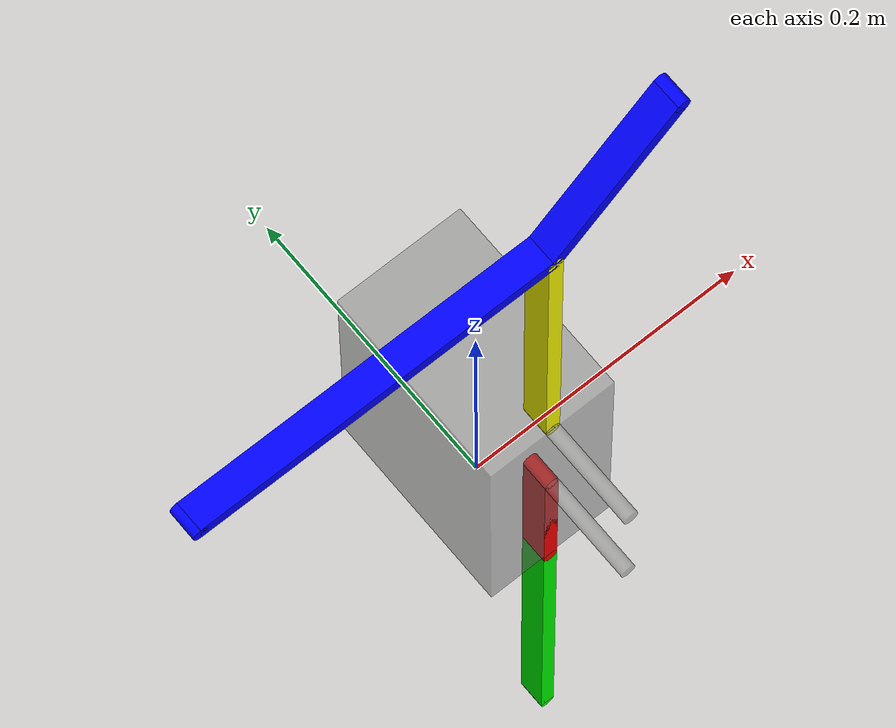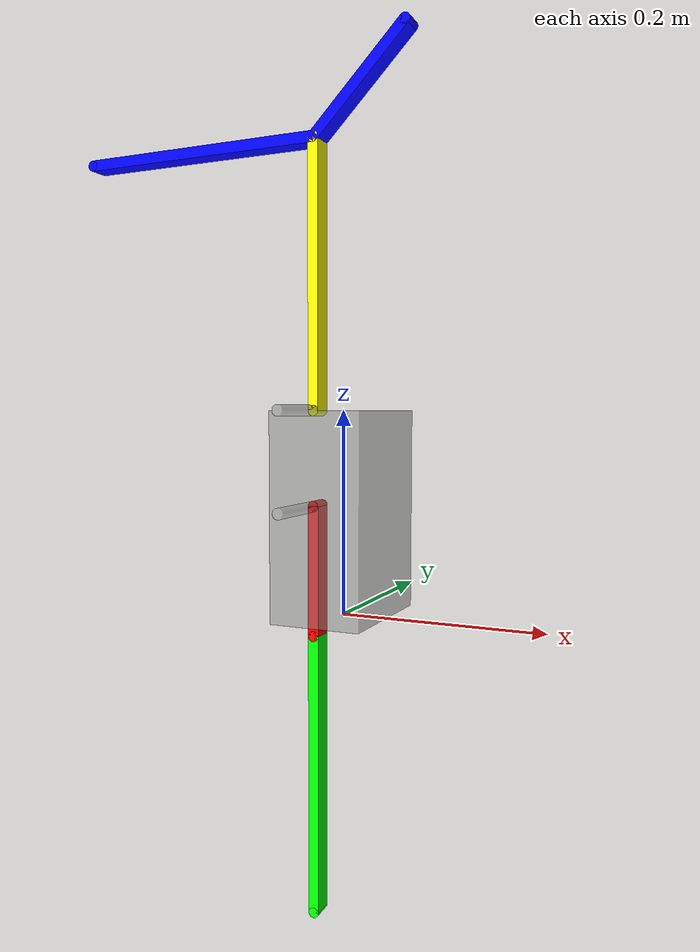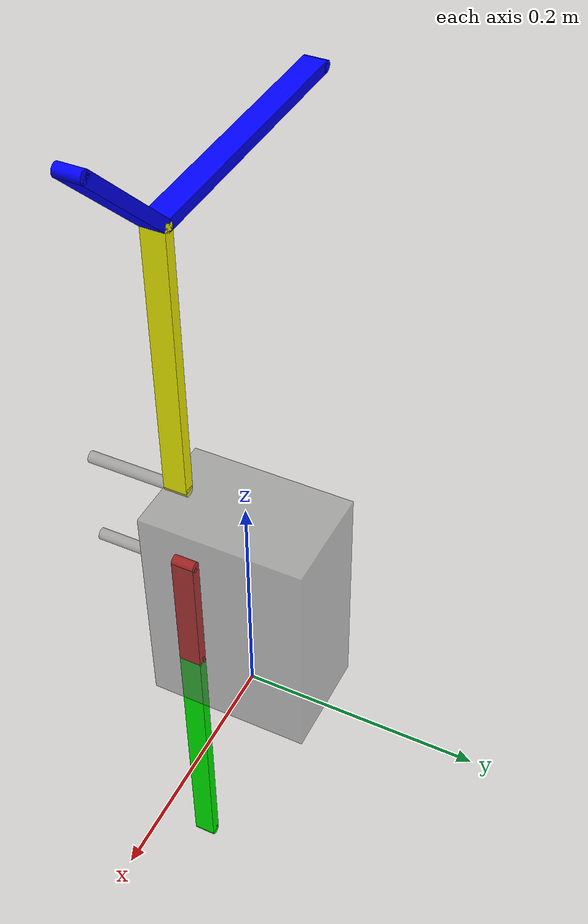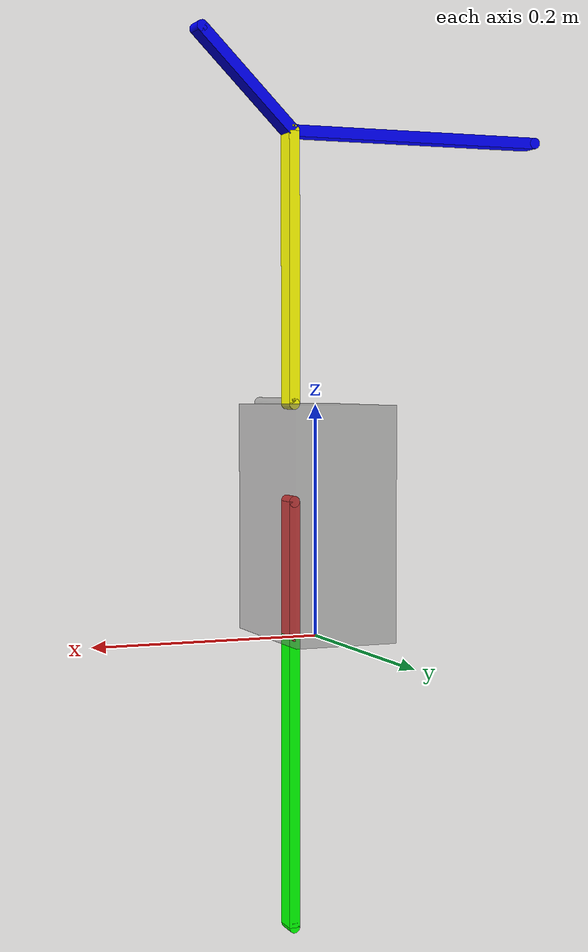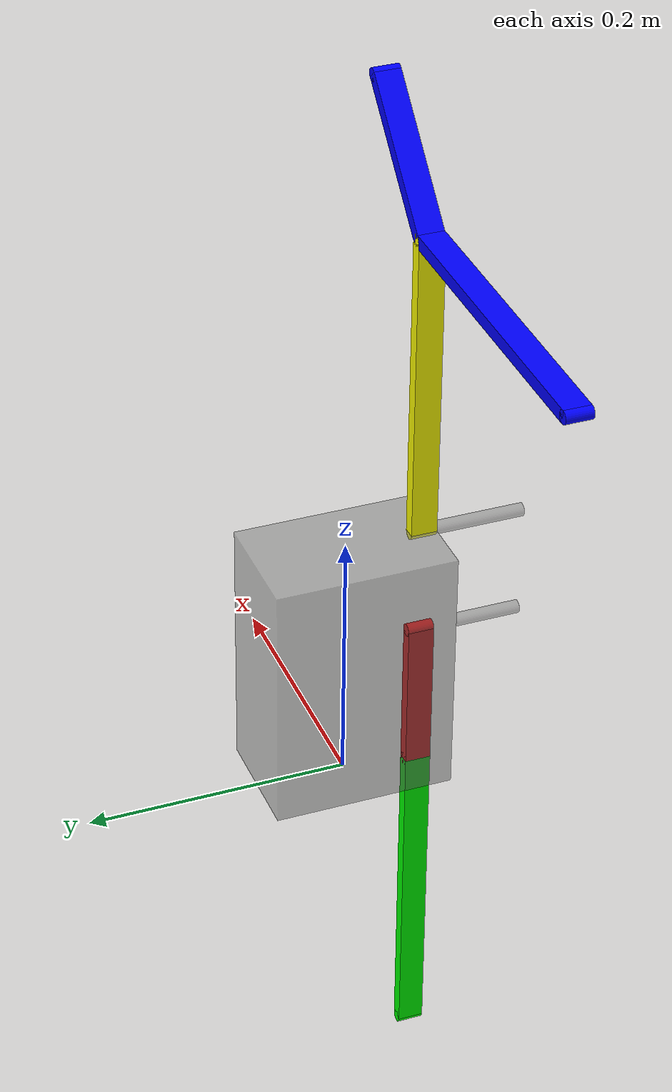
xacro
<?xml version="1.0"?>
<robot xmlns:xacro="http://ros.org/wiki/xacro" name="robot">

  <xacro:include filename="$(find bam_descriptions)/urdf/common.xacro" />

  <!--
  Copied from dummy_five_bar.urdf.xacro

  Values changes to match prototype arm
   -->

  <!-- Five-Bar Mechanism Parameters (in meters) -->
  <xacro:arg name="L_l1" default="0.240"/>      <!-- Length of link 1 -->
  <xacro:arg name="L_l2" default="0.240"/>      <!-- Length of link 2 -->
  <xacro:arg name="L_c1" default="0.120"/>      <!-- Length of coupler 1 -->
  <xacro:arg name="L_c2" default="0.265"/>      <!-- Length of coupler 2 -->
  <xacro:arg name="L_shoulder" default="0.087"/> <!-- Shoulder offset length -->
  <xacro:arg name="L_elbow" default="0.120"/>   <!-- Elbow offset length -->
  <xacro:arg name="theta_elbow_offset" default="0.785398"/> <!-- Elbow offset angle in radians (45 degrees) -->

  <xacro:property name="L_l1" value="$(arg L_l1)"/>
  <xacro:property name="L_l2" value="$(arg L_l2)"/>
  <xacro:property name="L_c1" value="$(arg L_c1)"/>
  <xacro:property name="L_c2" value="$(arg L_c2)"/>
  <xacro:property name="L_shoulder" value="$(arg L_shoulder)"/>
  <xacro:property name="L_elbow" value="$(arg L_elbow)"/>
  <xacro:property name="theta_elbow_offset" value="$(arg theta_elbow_offset)"/>

  <xacro:arg name="dh_d1" default="0.2"/>
  <xacro:property name="dh_d1" value="$(arg dh_d1)"/>

  <xacro:arg name="j2_axis_offset" default="${69/1000}"/>
  <xacro:property name="j2_axis_offset" value="$(arg j2_axis_offset)"/>

  <xacro:arg name="plugin" default="mock"/>  <!-- none, mock, gazebo, real -->
  <xacro:property name="plugin" value="$(arg plugin)" />

  <xacro:arg name="controllers_file_path" default="/home/bam/bam_ws/src/bam_core/bam_core_bringup/config/controllers/five_bar_controllers.yaml"/>
  <xacro:property name="controllers_file_path" value="$(arg controllers_file_path)"/>

  <xacro:arg name="ros_namespace" default=""/>
  <xacro:property name="ros_namespace" value="$(arg ros_namespace)"/>

  <xacro:arg name="world_xyz" default="0 0 0"/>
  <xacro:property name="world_xyz" value="$(arg world_xyz)"/>

  <xacro:arg name="world_rpy" default="0 0 0"/>
  <xacro:property name="world_rpy" value="$(arg world_rpy)"/>

  <xacro:arg name="base_xyz" default="0 0 0"/>
  <xacro:property name="base_xyz" value="$(arg base_xyz)"/>

  <xacro:arg name="base_rpy" default="0 0 0"/>
  <xacro:property name="base_rpy" value="$(arg base_rpy)"/>

  <xacro:arg name="ros2_control" default="true"/>
  <xacro:property name="ros2_control" value="$(arg ros2_control)"/>

  <xacro:arg name="prefix" default=""/>
  <xacro:property name="prefix" value="$(arg prefix)"/>

  <xacro:arg name="k_damping" default="0.001"/>
  <xacro:property name="k_damping" value="$(arg k_damping)"/>

  <xacro:arg name="k_friction" default="0.01"/>
  <xacro:property name="k_friction" value="$(arg k_friction)"/>

  <xacro:arg name="couple_arms" default="true"/>
  <xacro:property name="couple_arms" value="$(arg couple_arms)"/>

  <xacro:arg name="reflect" default="1"/>
  <xacro:property name="reflect" value="$(arg reflect)"/>

  <xacro:property name="pos_reflect_1_neg_reflect_0" value="${(reflect+1)*0.5}"/>
  <xacro:property name="pos_reflect_0_neg_reflect_1" value="${(reflect-1)*-0.5}"/>

<!-- World is used to position robot in the world, Assuming that it's already orietnated correctly -->
    <link name="world"/>

    <joint name="world_to_base" type="fixed">
        <origin xyz="${world_xyz}" rpy="${world_rpy}"/>
        <parent link="world"/>
        <child link="base_link"/>
    </joint>

    <link name="base_link">
        <xacro:dummy_inertial/>
    </link>

<!-- Base link is used to position the robot correctly relative to its self -->
    <joint name="base_link_joint" type="fixed">
        <origin xyz="${base_xyz}" rpy="${base_rpy}"/>
        <parent link="base_link"/>
        <child link="dummy_base_link"/>
    </joint>

    <link name="dummy_base_link">
        <xacro:dummy_inertial/>
    </link>

  <joint name="${prefix}joint_1" type="revolute">
    <parent link="dummy_base_link"/>
    <child link="${prefix}link_0"/>
    <origin xyz="0 0 0" rpy="0 0 ${pos_reflect_1_neg_reflect_0*pi}"/> <!-- UR base link is rotated 180 deg -->

    <axis xyz="0 0 1"/>
    <limit lower="${-pi}" upper="${pi}" velocity="100" effort="100"/>
  </joint>

  <link name="${prefix}link_0">
    <visual>
      <origin xyz="0 0 ${dh_d1/2}" rpy="0 0 0"/>
      <geometry>
        <box size="${90/1000} ${j2_axis_offset*2} ${dh_d1}"/>
      </geometry>
      <material name="grey"><color rgba="0.5 0.5 0.5 0.5"/></material>
    </visual>
  </link>

  <joint name="${prefix}link_0_to_shoulder_center" type="fixed">
    <parent link="${prefix}link_0"/>
    <child link="${prefix}shoulder_center"/>
    <origin xyz="0 ${j2_axis_offset} ${dh_d1}" rpy="${-pi/2} ${-pi/2} ${pos_reflect_1_neg_reflect_0*pi}"/>

  </joint>

  <link name="${prefix}shoulder_center">
  </link>

  <joint name="${prefix}centering_joint" type="fixed">
    <parent link="${prefix}shoulder_center"/>
    <child link="${prefix}shoulder"/>
    <origin xyz="-${L_shoulder} 0 0" rpy="0 0 0"/>

  </joint>

  <xacro:include filename="$(find bam_descriptions)/urdf/dummy_five_bar/five_bar_marco.xacro"/>

  <xacro:five_bar
    prefix=""
    L_l1="${L_l1}"
    L_l2="${L_l2}"
    L_c1="${L_c1}"
    L_c2="${L_c2}"
    L_shoulder="${L_shoulder}"
    L_elbow="${L_elbow}"
    theta_elbow_offset="${theta_elbow_offset}"
    k_damping="${k_damping}"
    k_friction="${k_friction}"
    actuator_length="${j2_axis_offset}"/>

    <xacro:if value="${ros2_control}">
    <xacro:include filename="$(find bam_descriptions)/urdf/dummy_five_bar/five_bar.ros2_control.xacro" />
        <xacro:five_bar_ros2_control
        prefix="${prefix}"
        plugin="${plugin}"
        controllers_file_path="${controllers_file_path}"
        ros_namespace="${ros_namespace}"
        couple_arms="${couple_arms}"/>

    </xacro:if>

</robot>

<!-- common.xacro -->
<robot xmlns:xacro="http://www.ros.org/wiki/xacro">

  <xacro:property name="deg2rad" value="${pi/180}"/>
  <xacro:property name="rev2rad" value="${2*pi}"/>
  <xacro:property name="inch2m" value="${25.4/1000}"/>
  <xacro:property name="mm2m" value="${1/1000}"/>

  <xacro:macro name="cylinder_tube_link" params="name outer_radius inner_radius length density origin_offset mass=-1 material='StoglRobotics/LightGrey'">
    <!-- Length goes along z axis -->

      <link name="${name}">

        <xacro:if value="${mass == -1}">
          <xacro:property name="outer_area" value="${outer_radius * outer_radius * pi}"/>
          <xacro:property name="inner_area" value="${inner_radius * inner_radius * pi}"/>
          <xacro:property name="volume" value="${length * (outer_area - inner_area)}"/>
          <xacro:property name="mass" value="${volume * density}"/>
        </xacro:if>

        <visual>
          <origin xyz="0 0 ${origin_offset}" rpy="0 0 0"/>
          <geometry>
              <cylinder length="${length}" radius="${outer_radius}"/>
          </geometry>
          <material name="${material}"/>
        </visual>

        <collision>
          <origin xyz="0 0 ${origin_offset}" rpy="0 0 0"/>
          <geometry>
              <cylinder length="${length}" radius="${outer_radius}"/>
          </geometry>
        </collision>

        <xacro:cylinder_inertial length="${length}" outer_radius="${outer_radius}" inner_radius="${inner_radius}" mass="${mass}" origin_xyz="0 0 ${origin_offset}"/>

      </link>
  </xacro:macro>

  <xacro:macro name="rectangular_tube_link"
      params="name width length height wall_thickness density origin_offset mass=-1 material='StoglRobotics/LightGrey'"> -->

      <!-- Length goes along y, width goes along x, height goes along z -->

      <!-- length goes from hole to hole, while link_total_length goes from outer edge to outer edge. To center link around holes, add width/2 to both ends -->
      <xacro:if value="${mass == -1}">
        <xacro:property name="outer_area" value="${width * height}"/>
        <xacro:property name="inner_area" value="${(width - 2*wall_thickness) * (height - 2*wall_thickness)}"/>
        <xacro:property name="volume" value="${length * (outer_area - inner_area)}"/>
        <xacro:property name="mass" value="${volume * density}"/>
      </xacro:if>

      <link name="${name}">

        <!-- It may make more sense to have origin in center of thickness, but when you export as cade, usally is done from edge -->
        <visual>
            <origin xyz="0 ${origin_offset} ${height/2}" rpy="0 0 0"/>
            <geometry>
                <box size="${width} ${length} ${height}"/>
            </geometry>
            <material name="${material}"/>
        </visual>

        <collision>
            <origin xyz="0 ${origin_offset} ${height/2}" rpy="0 0 0"/>
            <geometry>
                <box size="${width} ${length} ${height}"/>
            </geometry>
        </collision>

        <xacro:solid_cuboid_inertial width="${width}" height="${length}" depth="${height}" mass="${mass}" origin_xyz="0 ${origin_offset} ${height/2}"/>
      </link>

  </xacro:macro>

  <xacro:macro name="rectangular_plate_link" params="name width length plate_thickness density origin_offset mass=-1 material='StoglRobotics/LightGrey'">
      <!-- Origin offset is usally length/2 or length/2 + width/2 + width/2  -->
      <!-- length goes from hole to hole, while link_total_length goes from outer edge to outer edge. To center link around holes, add width/2 to both ends -->

      <!-- Length goes along y, width goes along x, thickness goes along z -->

      <xacro:if value="${mass == -1}">
        <xacro:property name="volume" value="${length * width * plate_thickness}"/>
        <xacro:property name="mass" value="${volume * density}"/>
      </xacro:if>

      <!-- It may make more sense to have origin in center of thickness, but when you export as cade, usally is done from edge -->
      <link name="${name}">

      <visual>
          <origin xyz="0 ${origin_offset} ${plate_thickness/2}" rpy="0 0 0"/>
          <geometry>
              <box size="${width} ${length} ${plate_thickness}"/>
          </geometry>
          <material name="${material}"/>
      </visual>

      <collision>
          <origin xyz="0 ${origin_offset} ${plate_thickness/2}" rpy="0 0 0"/>
          <geometry>
              <box size="${width} ${length} ${plate_thickness}"/>
          </geometry>
      </collision>

      <xacro:solid_cuboid_inertial width="${width}" height="${length}" depth="${plate_thickness}" mass="${mass}" origin_xyz="0 ${origin_offset} ${plate_thickness/2}"/>
      </link>

  </xacro:macro>

  <!-- https://en.wikipedia.org/wiki/List_of_moments_of_inertia#:~:text=Solid%20cuboid%20of%20width -->
  <!-- Inertia properties for wrist_link, scoped to this macro only -->
  <!-- Width goes along x, height goes along y, depth goes along z -->
  <xacro:macro name="solid_cuboid_inertial" params="width height depth mass origin_xyz">
      <xacro:property name="inertia_xx" value="${(1/12) * mass * (height * height + depth * depth)}"/>
      <xacro:property name="inertia_yy" value="${(1/12) * mass * (width * width + depth * depth)}"/>
      <xacro:property name="inertia_zz" value="${(1/12) * mass * (width * width + height * height)}"/>
      <inertial>
          <origin xyz="${origin_xyz}"/>
          <mass value="${mass}"/>
          <inertia ixx="${inertia_xx}" ixy="0" ixz="0"
                    iyy="${inertia_yy}" iyz="0"
                    izz="${inertia_zz}"/>
      </inertial>
  </xacro:macro>

  <!-- https://en.wikipedia.org/wiki/List_of_moments_of_inertia#:~:text=%5D-,Solid%20cylinder%20of,-radius%20r%2C%20height -->
  <!-- Inertia properties for motor block, scoped to this macro only -->
  <!-- I initally thought it should be outer_radius - inner_radius, but actually a hollow cylinder should have a higher interia! as more mass further away -->
  <xacro:macro name="cylinder_inertial" params="length outer_radius mass origin_xyz inner_radius=0">
      <xacro:property name="inertia_xx" value="${(1/12) * mass * (3*(outer_radius*outer_radius + inner_radius*inner_radius) + length*length)}"/>
      <xacro:property name="inertia_yy" value="${(1/12) * mass * (3*(outer_radius*outer_radius + inner_radius*inner_radius) + length*length)}"/>
      <xacro:property name="inertia_zz" value="${0.5*mass*(outer_radius*outer_radius + inner_radius*inner_radius)}"/>
      <inertial>
          <origin xyz="${origin_xyz}"/>
          <mass value="${mass}"/>
          <inertia ixx="${inertia_xx}" ixy="0" ixz="0"
                    iyy="${inertia_yy}" iyz="0"
                    izz="${inertia_zz}"/>
      </inertial>
  </xacro:macro>

<xacro:macro name="dummy_inertial">
<!-- Super small interia to not effect dynamics and small rviz interia box -->
    <inertial>
        <mass value="0.0001"/>
        <origin xyz="0 0 0" rpy="0 0 0"/>
        <inertia
            ixx="0.001" ixy="0.00001" ixz="0.00001"
            iyy="0.001" iyz="0.00001"
            izz="0.001"/>
    </inertial>
</xacro:macro>

<xacro:macro name="dummy_link">

  <!-- Small visual box so that link can be turned off in rviz -->
  <visual>
    <origin xyz="0 0 0" rpy="0 0 0"/>
    <geometry>
      <box size="0.001 0.001 0.001"/>
    </geometry>
    <material name="transparent_gray">
      <color rgba="0.5 0.5 0.5 0.1"/>
    </material>
  </visual>

  <xacro:dummy_inertial/>

</xacro:macro>

  <material name="StoglRobotics/Violet">
    <color rgba="${102/255} ${46/255} ${145/255} 1.0"/>
    <ambient>1 0 0 1</ambient>
    <diffuse>1 0 0 1</diffuse>
    <specular>0.1 0.1 0.1 1</specular>
    <emissive>0 0 0 0</emissive>
  </material>

  <material name="StoglRobotics/DarkGrey">
    <color rgba="${51/255} ${51/255} ${51/255} 1.0"/>
    <ambient>1 0 0 1</ambient>
    <diffuse>1 0 0 1</diffuse>
    <specular>0.1 0.1 0.1 1</specular>
    <emissive>0 0 0 0</emissive>
  </material>

  <material name="StoglRobotics/LightGrey">
    <color rgba="${194/255} ${194/255} ${194/255} 1.0"/>
    <ambient>1 0 0 1</ambient>
    <diffuse>1 0 0 1</diffuse>
    <specular>0.1 0.1 0.1 1</specular>
    <emissive>0 0 0 0</emissive>
  </material>

  <material name="Ghost">
    <color rgba="${194/255} ${194/255} ${194/255} 0.5"/>
    <ambient>1 0 0 1</ambient>
    <diffuse>1 0 0 1</diffuse>
    <specular>0.1 0.1 0.1 1</specular>
    <emissive>0 0 0 0</emissive>
  </material>

  <material name="Black">
    <color rgba="${0/255} ${0/255} ${0/255} 1"/>
    <ambient>1 0 0 1</ambient>
    <diffuse>1 0 0 1</diffuse>
    <specular>0.1 0.1 0.1 1</specular>
    <emissive>0 0 0 0</emissive>
  </material>

  <material name="White">
    <color rgba="${255/255} ${255/255} ${255/255} 1"/>
    <ambient>1 0 0 1</ambient>
    <diffuse>1 0 0 1</diffuse>
    <specular>0.1 0.1 0.1 1</specular>
    <emissive>0 0 0 0</emissive>
  </material>

  <material name="Red">
    <color rgba="1.0 0.0 0.0 1.0"/>
    <ambient>1 0 0 1</ambient>
    <diffuse>1 0 0 1</diffuse>
    <specular>0.1 0.1 0.1 1</specular>
    <emissive>0 0 0 0</emissive>
  </material>

  <material name="Orange">
    <color rgba="1.0 0.55 0.0 1.0"/>
    <ambient>1 0.5 0 1</ambient>
    <diffuse>1 0.5 0 1</diffuse>
    <specular>0.1 0.1 0.1 1</specular>
    <emissive>0 0 0 0</emissive>
  </material>

  <material name="Yellow">
    <color rgba="1.0 1.0 0.0 1.0"/>
    <ambient>1 1 0 1</ambient>
    <diffuse>1 1 0 1</diffuse>
    <specular>0.1 0.1 0.1 1</specular>
    <emissive>0 0 0 0</emissive>
  </material>

  <material name="Green">
    <color rgba="0.0 1.0 0.0 1.0"/>
    <ambient>0 1 0 1</ambient>
    <diffuse>0 1 0 1</diffuse>
    <specular>0.1 0.1 0.1 1</specular>
    <emissive>0 0 0 0</emissive>
  </material>

  <material name="Blue">
    <color rgba="0.0 0.0 1.0 1.0"/>
    <ambient>0 0 1 1</ambient>
    <diffuse>0 0 1 1</diffuse>
    <specular>0.1 0.1 0.1 1</specular>
    <emissive>0 0 0 0</emissive>
  </material>

  <material name="Indigo">
    <color rgba="0.29 0.0 0.51 1.0"/>
    <ambient>0.25 0 0.45 1</ambient>
    <diffuse>0.25 0 0.45 1</diffuse>
    <specular>0.1 0.1 0.1 1</specular>
    <emissive>0 0 0 0</emissive>
  </material>

  <material name="Violet">
    <color rgba="0.56 0.0 1.0 1.0"/>
    <ambient>0.5 0 1 1</ambient>
    <diffuse>0.5 0 1 1</diffuse>
    <specular>0.1 0.1 0.1 1</specular>
    <emissive>0 0 0 0</emissive>
  </material>

</robot>

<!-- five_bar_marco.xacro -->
<robot xmlns:xacro="http://ros.org/wiki/xacro" name="robot">

  <!-- Five-Bar Mechanism Parameters (in meters) -->
  <xacro:arg name="L_l1" default="0.240"/>      <!-- Length of link 1 -->
  <xacro:arg name="L_l2" default="0.240"/>      <!-- Length of link 2 -->
  <xacro:arg name="L_c1" default="0.120"/>      <!-- Length of coupler 1 -->
  <xacro:arg name="L_c2" default="0.265"/>      <!-- Length of coupler 2 -->
  <xacro:arg name="L_shoulder" default="0.087"/> <!-- Shoulder offset length -->
  <xacro:arg name="L_elbow" default="0.120"/>   <!-- Elbow offset length -->
  <xacro:arg name="theta_elbow_offset" default="0.785398"/> <!-- Elbow offset angle in radians (45 degrees) -->

  <xacro:property name="L_l1" value="$(arg L_l1)"/>
  <xacro:property name="L_l2" value="$(arg L_l2)"/>
  <xacro:property name="L_c1" value="$(arg L_c1)"/>
  <xacro:property name="L_c2" value="$(arg L_c2)"/>
  <xacro:property name="L_shoulder" value="$(arg L_shoulder)"/>
  <xacro:property name="L_elbow" value="$(arg L_elbow)"/>
  <xacro:property name="theta_elbow_offset" value="$(arg theta_elbow_offset)"/>

  <!-- Hardcoded values -->

  <xacro:property name="link_width" value="0.01"/>
  <xacro:property name="link_thickness" value="${20/1000}"/>
  <xacro:property name="link_density" value="2700"/>  <!--The density of aluminum is approximately 2,700 kg/m³-->

  <xacro:property name="deg2rad" value="${pi/180}"/>
  <!-- Buffer needed on second links to avoid singularity of folding backwards-->
  <xacro:property name="buffer" value="${5 * deg2rad}"/>

  <!-- BUG at 180 + 45, there is a elbow forward/backwards singualrity you hit... that shows up as an inconsitency in the reach map.. -->
  <xacro:property name="J2_upper" value="${(180 + 35) * deg2rad}"/>
  <xacro:property name="J2_lower" value="${0 * deg2rad}"/>

  <!-- Elbow should just be able to curl inwards -->
  <!-- Important to add buffer or you will hit singularities!! -->
  <xacro:property name="J3_upper" value="${0 * deg2rad - buffer}"/>
  <xacro:property name="J3_lower" value="${-pi + theta_elbow_offset + buffer}"/>  <!-- Reasonable to -->
  <xacro:property name="J3_lower" value="${-pi + buffer}"/>  <!-- For viz of entire workspace -->

  <xacro:property name="C1_upper" value="${340 * deg2rad}"/>
  <xacro:property name="C1_lower" value="${20 * deg2rad}"/>

  <xacro:property name="C2_upper" value="${180 * deg2rad - buffer}"/>
  <xacro:property name="C2_lower" value="${-180 * deg2rad + buffer}"/>

  <!-- Link Colors -->
  <xacro:property name="shoulder_color" value="0.5 0.5 0.5 0.5"/>          <!-- Blue for shoulder -->
  <xacro:property name="c1_color" value="1 0 0 1"/>           <!-- Red for couplers -->
  <xacro:property name="c2_color" value="0 1 0 1"/>         <!-- Green for upper arm -->
  <xacro:property name="l1_color" value="1 1 0 1"/>          <!-- Yellow for fore arm -->
  <xacro:property name="l2_color" value="0 0 1 1"/>          <!-- Blue for fore arm -->

  <xacro:macro name="slot_link" params="name link_width link_length link_thickness link_mass color">
    <!-- Length goes along y, width goes along x, thickness goes along z -->

    <xacro:property name="link_inertia_xx_zz" value="${(1/12) * link_mass * link_length * link_length}"/>

    <link name="${name}">
      <visual>
        <origin xyz="0 0 ${link_thickness/2}" rpy="0 0 0"/>
        <geometry>
          <cylinder radius="${link_width/2}" length="${link_thickness}"/>
        </geometry>
        <material name="${name}_material"><color rgba="${color}"/></material>
      </visual>

      <visual>
        <origin xyz="0 ${link_length/2} ${link_thickness/2}" rpy="0 0 0"/>
        <geometry>
          <box size="${link_width} ${link_length} ${link_thickness}"/>
        </geometry>
        <material name="${name}_material"><color rgba="${color}"/></material>
      </visual>

      <visual>
        <origin xyz="0 ${link_length} ${link_thickness/2}" rpy="0 0 0"/>
        <geometry>
          <cylinder radius="${link_width/2}" length="${link_thickness}"/>
        </geometry>
        <material name="${name}_material"><color rgba="${color}"/></material>
      </visual>

      <inertial>
        <origin xyz="0 ${link_length/2} ${link_thickness/2}"/>
        <mass value="${link_mass}"/>
        <inertia ixx="${link_inertia_xx_zz}" ixy="0" ixz="0"
                 iyy=" 1e-6" iyz="0"
                 izz="${link_inertia_xx_zz}"/>
      </inertial>

    </link>
  </xacro:macro>

<!-- Joints should be named to match the real arm, so that the five bar kinematics joint_to_name_index mapping works -->
    <!-- self.J2_joint_index = name_to_joint_index['joint_2'] # real -->
    <!-- self.J3_joint_index = name_to_joint_index['joint_3'] # virtual -->
    <!-- self.joint_c1_index = name_to_joint_index['joint_c1'] # real -->
    <!-- self.joint_c2_index = name_to_joint_index['joint_c2'] # virtual -->

  <xacro:macro name="five_bar" params="
    prefix=''
    L_l1
    L_l2
    L_c1
    L_c2
    L_shoulder
    L_elbow
    theta_elbow_offset
    k_damping
    k_friction
    actuator_length=0.05
    ">

    <link name="${prefix}shoulder">
      <visual>
        <origin xyz="0 0 ${-actuator_length/2}" rpy="0 0 0"/>
        <geometry>
          <cylinder radius="${link_width/2}" length="${actuator_length}"/>
        </geometry>
        <material name="shoulder_material"><color rgba="${shoulder_color}"/></material>
      </visual>

      <visual>
        <origin xyz="${L_shoulder} 0 ${-actuator_length/2}" rpy="0 0 0"/>
        <geometry>
          <cylinder radius="${link_width/2}" length="${actuator_length}"/>
        </geometry>
        <material name="shoulder_material"><color rgba="${shoulder_color}"/></material>
      </visual>

      <xacro:dummy_inertial/>

    </link>

    <!-- REGION: COUPLER ARM -->

      <joint name="${prefix}joint_c1" type="revolute">
        <parent link="${prefix}shoulder"/>
        <child link="${prefix}C1"/>
        <origin xyz="0 0 0" rpy="0 0 ${-pi/2}"/>  <!-- X axis zero, as per Craig's convention -->
        <axis xyz="0 0 1"/>
        <limit lower="${C1_lower}" upper="${C1_upper}" velocity="100" effort="100"/>
        <dynamics damping="${k_damping}" friction="${k_friction}"/>
      </joint>

      <xacro:slot_link
        name="${prefix}C1"
        link_width="${link_width}"
        link_length="${L_c1}"
        link_thickness="${link_thickness}"
        link_mass="${link_density * L_c1 * link_thickness * link_width}"
        color="${c1_color}"
      />

      <joint name="${prefix}joint_c2" type="revolute">
        <parent link="${prefix}C1"/>
        <child link="${prefix}C2"/>
        <origin xyz="0 ${L_c1} 0" rpy="0 0 0"/>
        <axis xyz="0 0 1"/>
        <limit lower="${C2_lower}" upper="${C2_upper}" velocity="100" effort="100"/>
        <dynamics damping="${k_damping}" friction="${k_friction}"/>
      </joint>

      <xacro:slot_link
        name="${prefix}C2"
        link_width="${link_width}"
        link_length="${L_c2}"
        link_thickness="${link_thickness}"
        link_mass="${link_density * L_c2 * link_thickness * link_width}"
        color="${c2_color}"
      />

      <joint name="${prefix}C2_to_C2_coupler" type="fixed">
        <parent link="${prefix}C2"/>
        <child link="${prefix}C2_coupler"/>
        <origin xyz="0 ${L_c2} 0" rpy="0 0 0"/>
      </joint>

      <link name="${prefix}C2_coupler">
            <visual>
          <origin xyz="0 0 ${link_thickness/2}" rpy="0 0 0"/>
          <geometry>
            <cylinder radius="${link_width/2}" length="${link_thickness}"/>
          </geometry>
          <material name="C2_coupler_material"><color rgba="0 0 0 1"/></material>
        </visual>
        <xacro:dummy_inertial/>
      </link>

    <!-- REGIONEND: COUPLER ARM -->

    <!-- REGION: PRIMARY ARM -->

      <joint name="${prefix}joint_2" type="revolute">
        <parent link="${prefix}shoulder"/>
        <child link="${prefix}L1"/>
        <origin xyz="${L_shoulder} 0 0" rpy="0 0 ${-pi/2}"/>  <!-- X axis zero, as per Craig's convention -->
        <axis xyz="0 0 1"/>
        <limit lower="${J2_lower}" upper="${J2_upper}" velocity="100" effort="100"/>
        <dynamics damping="${k_damping}" friction="${k_friction}"/>
      </joint>

      <xacro:slot_link
        name="${prefix}L1"
        link_width="${link_width}"
        link_length="${L_l1}"
        link_thickness="${link_thickness}"
        link_mass="${link_density * L_l1 * link_thickness * link_width}"
        color="${l1_color}"
      />

      <joint name="${prefix}joint_3" type="revolute">
        <parent link="${prefix}L1"/>
        <child link="${prefix}L2"/>
        <origin xyz="0 ${L_l1} 0" rpy="0 0 0"/>
        <axis xyz="0 0 1"/>
        <limit lower="${J3_lower}" upper="${J3_upper}" velocity="100" effort="100"/>
        <dynamics damping="${k_damping}" friction="${k_friction}"/>
      </joint>

      <xacro:slot_link
        name="${prefix}L2"
        link_width="${link_width}"
        link_length="${L_l2}"
        link_thickness="${link_thickness}"
        link_mass="${link_density * L_l2 * link_thickness * link_width}"
        color="${l2_color}"
      />

      <joint name="${prefix}L2_to_elbow" type="fixed">
        <parent link="${prefix}L2"/>
        <child link="${prefix}elbow"/>
        <origin xyz="0 0 0" rpy="0 0 ${pi - theta_elbow_offset}"/>
      </joint>

      <xacro:slot_link
        name="${prefix}elbow"
        link_width="${link_width}"
        link_length="${L_elbow}"
        link_thickness="${link_thickness}"
        link_mass="${link_density * L_elbow * link_thickness * link_width}"
        color="${l2_color}"
      />

      <joint name="${prefix}L2_coupler_joint" type="revolute"> <!-- Virtual Coupler Link Joint -->
        <parent link="${prefix}elbow"/>
        <child link="${prefix}L2_coupler"/>
        <origin xyz="0 ${L_elbow} 0" rpy="0 0 0"/>
        <axis xyz="0 0 1"/>
        <limit lower="${-2*pi}" upper="${2*pi}" velocity="100" effort="100"/>
        <dynamics damping="${k_damping}" friction="${k_friction}"/>
      </joint>

      <link name="${prefix}L2_coupler"> <!-- Virtual Coupler Link -->
        <visual>
          <origin xyz="0 0 ${link_thickness/2}" rpy="0 0 0"/>
          <geometry>
            <cylinder radius="${link_width/2}" length="${link_thickness}"/>
          </geometry>
          <material name="L2_coupler_material"><color rgba="0 0 0 1"/></material>
        </visual>
        <xacro:dummy_inertial/>

      </link>

      <joint name="${prefix}L2_to_L2_tip" type="fixed">
        <parent link="${prefix}L2"/>
        <child link="${prefix}L2_tip"/>
        <origin xyz="0 ${L_l2} 0" rpy="0 0 0"/>
      </joint>

      <link name="${prefix}L2_tip">
      <xacro:dummy_inertial/>
      </link>
    <!-- REGIONEND: PRIMARY ARM -->

  </xacro:macro>

</robot>
